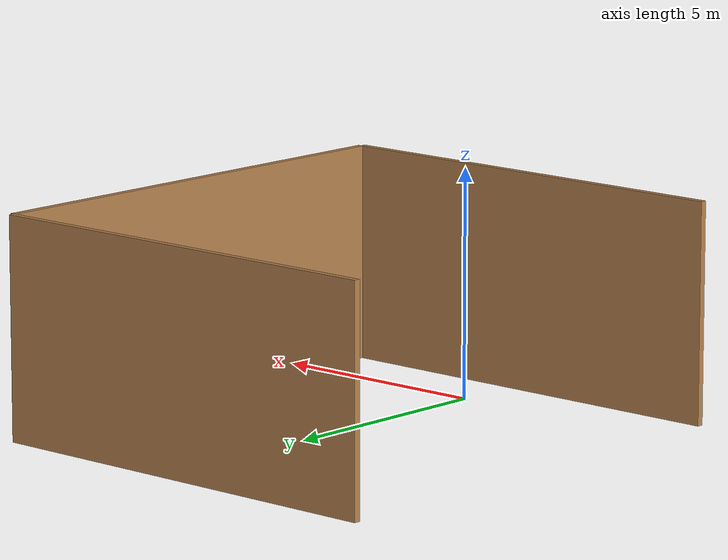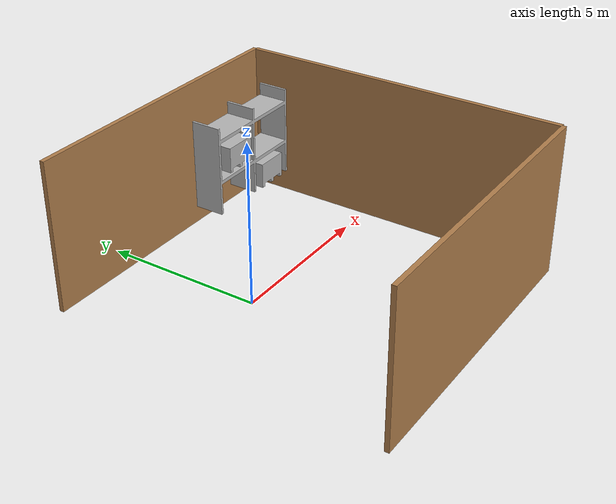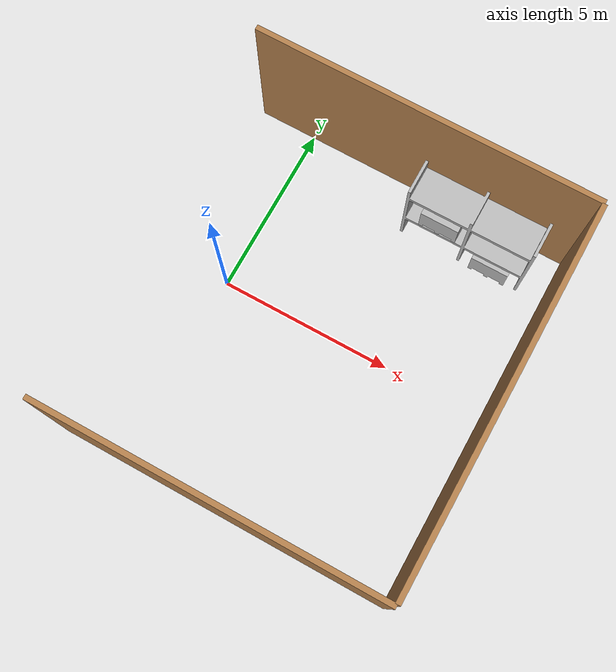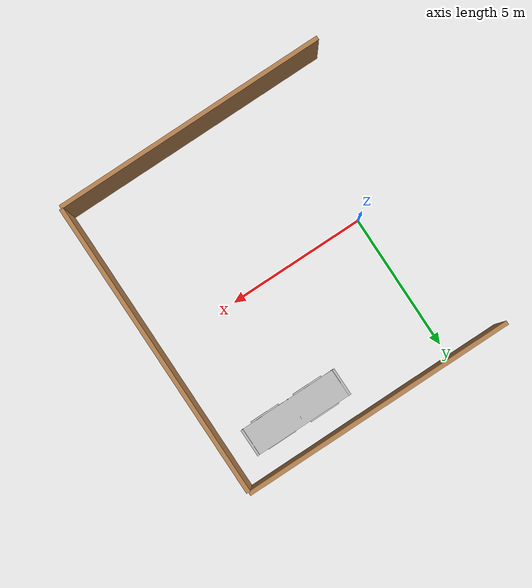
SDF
<sdf version='1.6'>
  <model name='agv_warehouse'>
    <link name='Left_Wall'>
      <pose frame=''>3 5.55 0 0 0 0</pose>
      <self_collide>0</self_collide>
      <kinematic>0</kinematic>
      <visual name='Left_Wall_Visual'>
        <pose frame=''>0 0 1.25 0 -0 0</pose>
        <geometry>
          <box>
            <size>10 0.15 5</size>
          </box>
        </geometry>
        <material>
          <script>
            <uri>file://media/materials/scripts/gazebo.material</uri>
            <name>Gazebo/Wood</name>
          </script>
          <ambient>1 1 1 1</ambient>
          <diffuse>1 1 1 1</diffuse>
          <specular>0.2 0.2 0.2 1</specular>
          <emissive>0 0 0 1</emissive>
        </material>
        <cast_shadows>1</cast_shadows>
        <transparency>0</transparency>
      </visual>
      <collision name='Left_Wall_Collision'>
        <laser_retro>0</laser_retro>
        <max_contacts>10</max_contacts>
        <pose frame=''>0 0 1.25 0 -0 0</pose>
        <geometry>
          <box>
            <size>10 0.15 5</size>
          </box>
        </geometry>
        <surface>
          <friction>
            <ode>
              <mu>1</mu>
              <mu2>1</mu2>
              <fdir1>0 0 0</fdir1>
              <slip1>0</slip1>
              <slip2>0</slip2>
            </ode>
            <torsional>
              <coefficient>1</coefficient>
              <patch_radius>0</patch_radius>
              <surface_radius>0</surface_radius>
              <use_patch_radius>1</use_patch_radius>
              <ode>
                <slip>0</slip>
              </ode>
            </torsional>
          </friction>
          <bounce>
            <restitution_coefficient>0</restitution_coefficient>
            <threshold>1e+06</threshold>
          </bounce>
          <contact>
            <collide_without_contact>0</collide_without_contact>
            <collide_without_contact_bitmask>1</collide_without_contact_bitmask>
            <collide_bitmask>1</collide_bitmask>
            <ode>
              <soft_cfm>0</soft_cfm>
              <soft_erp>0.2</soft_erp>
              <kp>1e+13</kp>
              <kd>1</kd>
              <max_vel>0.01</max_vel>
              <min_depth>0</min_depth>
            </ode>
            <bullet>
              <split_impulse>1</split_impulse>
              <split_impulse_penetration_threshold>-0.01</split_impulse_penetration_threshold>
              <soft_cfm>0</soft_cfm>
              <soft_erp>0.2</soft_erp>
              <kp>1e+13</kp>
              <kd>1</kd>
            </bullet>
          </contact>
        </surface>
      </collision>
    </link>

    <link name='Front_Wall'>
      <pose frame=''>8 0 0 0 0 -1.57</pose>
      <self_collide>0</self_collide>
      <kinematic>0</kinematic>
      <visual name='Front_Wall_Visual'>
        <pose frame=''>0 0 1.25 0 -0 0</pose>
        <geometry>
          <box>
            <size>11 0.15 5</size>
          </box>
        </geometry>
        <material>
          <script>
            <uri>file://media/materials/scripts/gazebo.material</uri>
            <name>Gazebo/Wood</name>
          </script>
          <ambient>1 1 1 1</ambient>
          <diffuse>1 1 1 1</diffuse>
          <specular>0.2 0.2 0.2 1</specular>
          <emissive>0 0 0 1</emissive>
        </material>
        <cast_shadows>1</cast_shadows>
        <transparency>0</transparency>
      </visual>
      <collision name='Front_Wall_Collision'>
        <laser_retro>0</laser_retro>
        <max_contacts>10</max_contacts>
        <pose frame=''>0 0 1.25 0 -0 0</pose>
        <geometry>
          <box>
            <size>11 0.15 5</size>
          </box>
        </geometry>
        <surface>
          <friction>
            <ode>
              <mu>1</mu>
              <mu2>1</mu2>
              <fdir1>0 0 0</fdir1>
              <slip1>0</slip1>
              <slip2>0</slip2>
            </ode>
            <torsional>
              <coefficient>1</coefficient>
              <patch_radius>0</patch_radius>
              <surface_radius>0</surface_radius>
              <use_patch_radius>1</use_patch_radius>
              <ode>
                <slip>0</slip>
              </ode>
            </torsional>
          </friction>
          <bounce>
            <restitution_coefficient>0</restitution_coefficient>
            <threshold>1e+06</threshold>
          </bounce>
          <contact>
            <collide_without_contact>0</collide_without_contact>
            <collide_without_contact_bitmask>1</collide_without_contact_bitmask>
            <collide_bitmask>1</collide_bitmask>
            <ode>
              <soft_cfm>0</soft_cfm>
              <soft_erp>0.2</soft_erp>
              <kp>1e+13</kp>
              <kd>1</kd>
              <max_vel>0.01</max_vel>
              <min_depth>0</min_depth>
            </ode>
            <bullet>
              <split_impulse>1</split_impulse>
              <split_impulse_penetration_threshold>-0.01</split_impulse_penetration_threshold>
              <soft_cfm>0</soft_cfm>
              <soft_erp>0.2</soft_erp>
              <kp>1e+13</kp>
              <kd>1</kd>
            </bullet>
          </contact>
        </surface>
      </collision>
    </link>

    <link name='Right_Wall'>
      <pose frame=''>3 -5.55 0 0 0 0</pose>
      <self_collide>0</self_collide>
      <kinematic>0</kinematic>
      <visual name='Right_Wall_Visual'>
        <pose frame=''>0 0 1.25 0 -0 0</pose>
        <geometry>
          <box>
            <size>10 0.15 5</size>
          </box>
        </geometry>
        <material>
          <script>
            <uri>file://media/materials/scripts/gazebo.material</uri>
            <name>Gazebo/Wood</name>
          </script>
          <ambient>1 1 1 1</ambient>
          <diffuse>1 1 1 1</diffuse>
          <specular>0.2 0.2 0.2 1</specular>
          <emissive>0 0 0 1</emissive>
        </material>
        <cast_shadows>1</cast_shadows>
        <transparency>0</transparency>
      </visual>
      <collision name='Right_Wall_Collision'>
        <laser_retro>0</laser_retro>
        <max_contacts>10</max_contacts>
        <pose frame=''>0 0 1.25 0 -0 0</pose>
        <geometry>
          <box>
            <size>10 0.15 5</size>
          </box>
        </geometry>
        <surface>
          <friction>
            <ode>
              <mu>1</mu>
              <mu2>1</mu2>
              <fdir1>0 0 0</fdir1>
              <slip1>0</slip1>
              <slip2>0</slip2>
            </ode>
            <torsional>
              <coefficient>1</coefficient>
              <patch_radius>0</patch_radius>
              <surface_radius>0</surface_radius>
              <use_patch_radius>1</use_patch_radius>
              <ode>
                <slip>0</slip>
              </ode>
            </torsional>
          </friction>
          <bounce>
            <restitution_coefficient>0</restitution_coefficient>
            <threshold>1e+06</threshold>
          </bounce>
          <contact>
            <collide_without_contact>0</collide_without_contact>
            <collide_without_contact_bitmask>1</collide_without_contact_bitmask>
            <collide_bitmask>1</collide_bitmask>
            <ode>
              <soft_cfm>0</soft_cfm>
              <soft_erp>0.2</soft_erp>
              <kp>1e+13</kp>
              <kd>1</kd>
              <max_vel>0.01</max_vel>
              <min_depth>0</min_depth>
            </ode>
            <bullet>
              <split_impulse>1</split_impulse>
              <split_impulse_penetration_threshold>-0.01</split_impulse_penetration_threshold>
              <soft_cfm>0</soft_cfm>
              <soft_erp>0.2</soft_erp>
              <kp>1e+13</kp>
              <kd>1</kd>
            </bullet>
          </contact>
        </surface>
      </collision>
    </link>

    <model name='reck'>
      <static>1</static>
      <link name='reck'>
        <collision name='collision'>
          <pose frame=''>0 0 0 0 -0 0</pose>
          <geometry>
            <mesh>
              <uri>model://agv_common/meshes/RECK.stl</uri>
              <scale>0.001 0.001 0.001</scale>
            </mesh>
          </geometry>
        </collision>
        <visual name='visual'>
          <geometry>
            <mesh>
              <uri>model://agv_common/meshes/RECK.stl</uri>
              <scale>0.001 0.001 0.001</scale>
            </mesh>
          </geometry>
        </visual>
      </link>
      <pose frame=''>5.3 4.200 0 0 0 0</pose>
    </model>
    <model name='top_pallet'>
      <static>0</static>
      <link name='top_pallet'>
        <collision name='box_coll'>
          <pose frame=''>0 0 0.485 0 -0 0</pose>
          <geometry>
            <box>
              <size>1.1 1.1 0.73</size>
            </box>
          </geometry>
        </collision>
        <collision name='leg_coll'>
          <pose frame=''>0 0 0.06 0 -0 0</pose>
          <geometry>
            <box>
              <size>0.12 1.1 0.12</size>
            </box>
          </geometry>
        </collision>
        <collision name='leg_coll_f'>
          <pose frame=''>0.49 0 0.06 0 -0 0</pose>
          <geometry>
            <box>
              <size>0.12 1.1 0.12</size>
            </box>
          </geometry>
        </collision>
        <collision name='leg_coll_s'>
          <pose frame=''>-0.49 0 0.06 0 -0 0</pose>
          <geometry>
            <box>
              <size>0.12 1.1 0.12</size>
            </box>
          </geometry>
        </collision>
        <visual name='visual'>
          <geometry>
            <mesh>
              <uri>model://agv_common/meshes/PALLET.stl</uri>
              <scale>0.001 0.001 0.001</scale>
            </mesh>
          </geometry>
        </visual>
      </link>
      <pose frame=''>4.5075 4.200 1.3 0 0 0</pose>
    </model>
    <model name='bot_pallet'>
      <static>0</static>
      <link name='bot_pallet'>
        <collision name='box_coll'>
          <pose frame=''>0 0 0.485 0 -0 0</pose>
          <geometry>
            <box>
              <size>1.1 1.1 0.73</size>
            </box>
          </geometry>
        </collision>
        <collision name='leg_coll'>
          <pose frame=''>0 0 0.06 0 -0 0</pose>
          <geometry>
            <box>
              <size>0.12 1.1 0.12</size>
            </box>
          </geometry>
        </collision>
        <collision name='leg_coll_f'>
          <pose frame=''>0.49 0 0.06 0 -0 0</pose>
          <geometry>
            <box>
              <size>0.12 1.1 0.12</size>
            </box>
          </geometry>
        </collision>
        <collision name='leg_coll_s'>
          <pose frame=''>-0.49 0 0.06 0 -0 0</pose>
          <geometry>
            <box>
              <size>0.12 1.1 0.12</size>
            </box>
          </geometry>
        </collision>
        <visual name='visual'>
          <geometry>
            <mesh>
              <uri>model://agv_common/meshes/PALLET.stl</uri>
              <scale>0.001 0.001 0.001</scale>
            </mesh>
          </geometry>
        </visual>
      </link>
      <pose frame=''>6.1925 4.200 0 0 0 0</pose>
    </model>
  </model>
</sdf>
